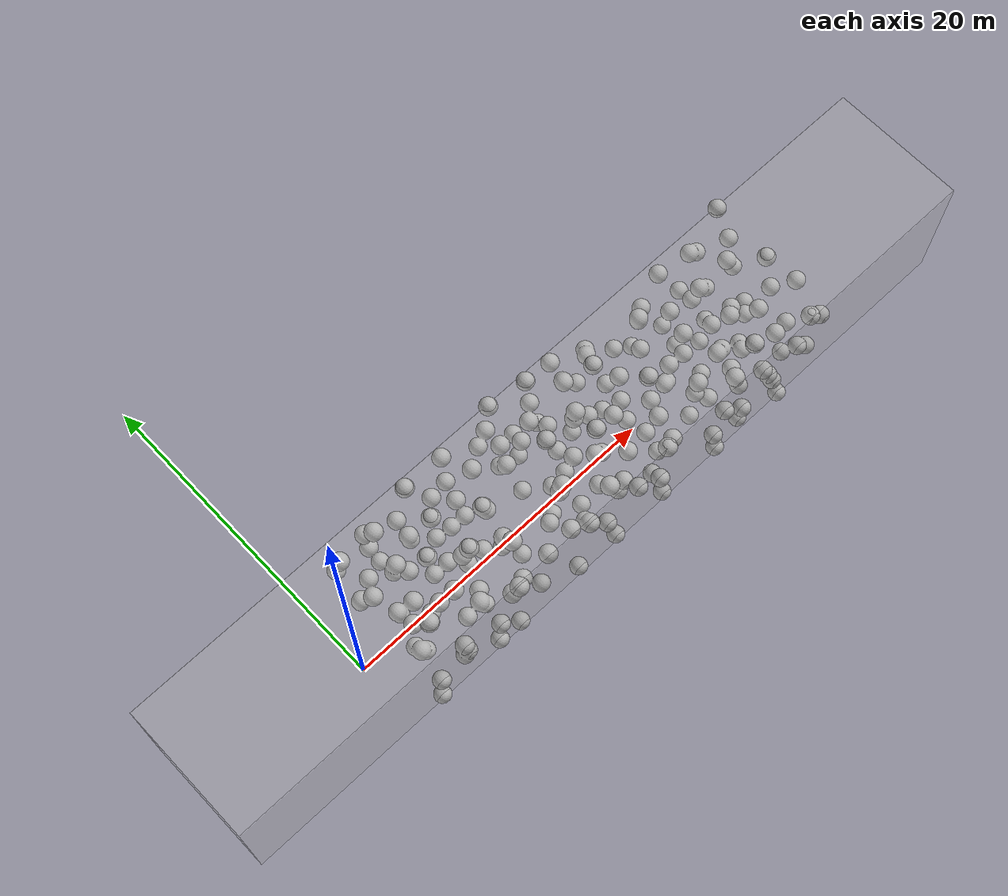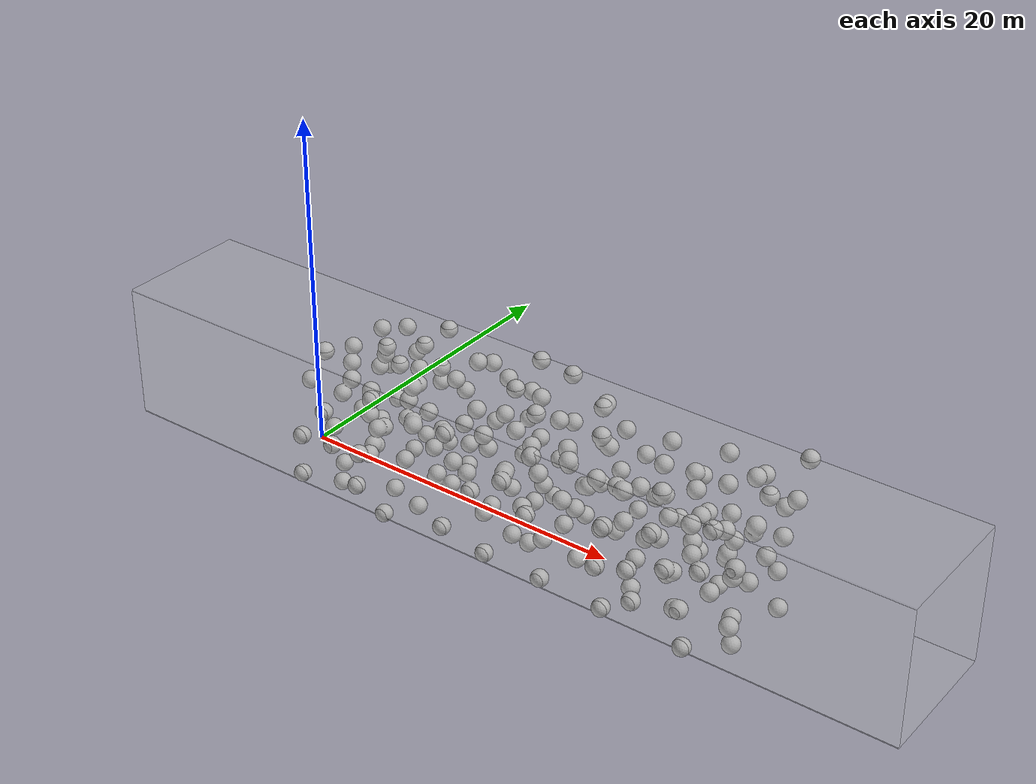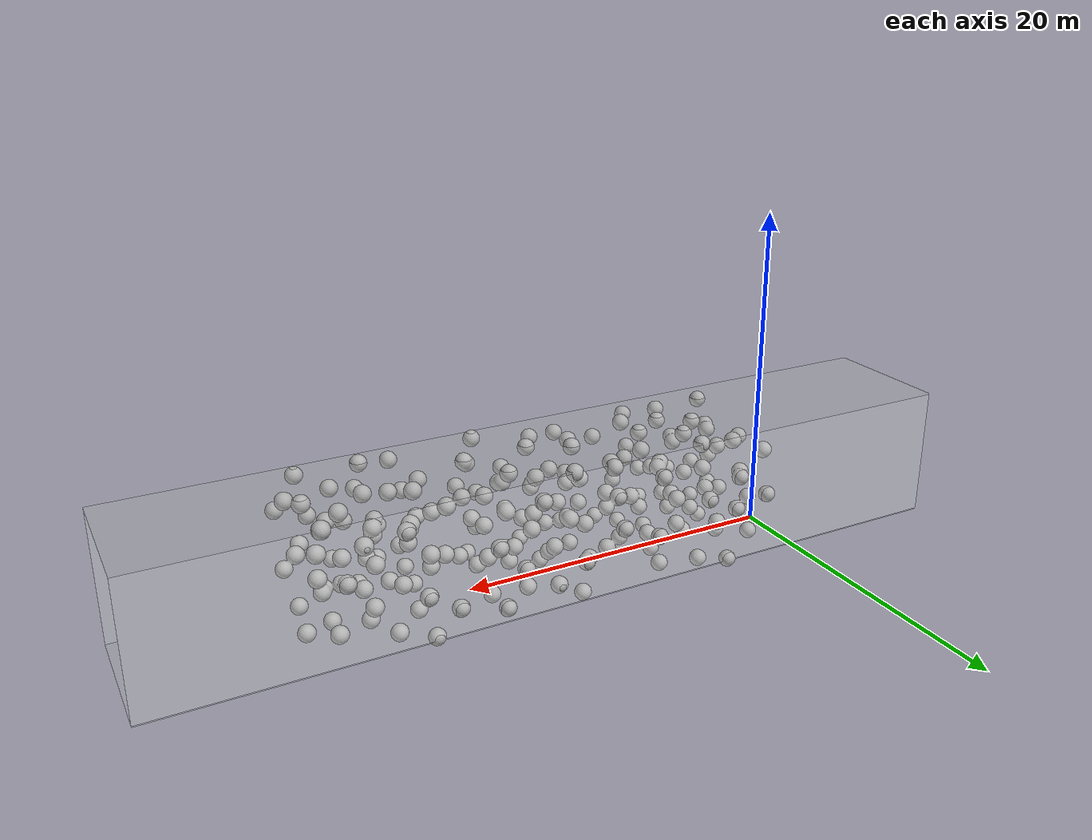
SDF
<?xml version="1.0"?>
<sdf version="1.8">
<world name="map">
    <physics name="1ms" type="ignored">
      <max_step_size>0.001</max_step_size>
      <real_time_factor>2.0</real_time_factor>
    </physics>

    <plugin filename="libgz-sim-physics-system.so" name="gz::sim::systems::Physics" />
    <plugin filename="libgz-sim-sensors-system.so" name="gz::sim::systems::Sensors">
        <render_engine>ogre2</render_engine>
    </plugin>
    <plugin filename="libgz-sim-contact-system" name="gz::sim::systems::Contact" />
    <plugin filename="libgz-sim-imu-system" name="gz::sim::systems::Imu" />
    <plugin filename="libgz-sim-scene-broadcaster-system.so" name="gz::sim::systems::SceneBroadcaster" />
    <plugin filename="libgz-sim-user-commands-system.so" name="gz::sim::systems::UserCommands" />

    <!-- sun and ground -->
    <light type="directional" name="sun">
        <cast_shadows>true</cast_shadows>
        <pose>0 0 10 0 0 0</pose>
        <diffuse>0.8 0.8 0.8 1</diffuse>
        <specular>0.2 0.2 0.2 1</specular>
        <attenuation>
            <range>1000</range>
            <constant>0.9</constant>
            <linear>0.01</linear>
            <quadratic>0.001</quadratic>
        </attenuation>
        <direction>-0.5 0.1 -0.9</direction>
    </light>

    <model name="ground_plane">
        <static>true</static>
        <link name="link">
            <pose>14.5 0 -0.05 0 0 0</pose>
            <collision name="collision">
                <geometry><box><size>50.0 8.0 0.1</size></box></geometry>
            </collision>
            <visual name="visual">
                <geometry><box><size>50.0 8.0 0.1</size></box></geometry>
                <material>
                    <ambient>0.8 0.8 0.8 0.15</ambient>
                    <diffuse>0.8 0.8 0.8 0.15</diffuse>
                    <specular>0.8 0.8 0.8 0.15</specular>
                </material>
            </visual>
        </link>
    </model>

    <model name="random_spheres_s0_d8_r2.0-2.0-2.0">
        <static>true</static>
        <link name="base_link">
            <visual name="merged_visual">
                <geometry>
                    <mesh><uri>meshes/random_spheres_s0_d8_r2.0-2.0-2.0.dae</uri></mesh>
                </geometry>
                <material>
                    <ambient>0.7 0.7 0.7 0.9</ambient>
                    <diffuse>0.7 0.7 0.7 0.9</diffuse>
                    <specular>0.7 0.7 0.7 0.9</specular>
                </material>
            </visual>
            <collision name="merged_collision">
                <geometry>
                    <mesh><uri>meshes/random_spheres_s0_d8_r2.0-2.0-2.0.dae</uri></mesh>
                </geometry>
            </collision>
        </link>
    </model>

    <model name="ceil">
        <static>true</static>
        <link name="link">
            <pose>14.5 0 8.05 0 0 0</pose>
            <collision name="collision">
                <geometry><box><size>50.0 8.0 0.1</size></box></geometry>
            </collision>
            <visual name="visual">
                <geometry><box><size>50.0 8.0 0.1</size></box></geometry>
                <material>
                    <ambient>0.8 0.8 0.8 0.15</ambient>
                    <diffuse>0.8 0.8 0.8 0.15</diffuse>
                    <specular>0.8 0.8 0.8 0.15</specular>
                </material>
            </visual>
        </link>
    </model>

    <model name="lwall">
        <static>true</static>
        <link name="link">
            <pose>14.5 4.0 4.0 1.57 0 0</pose>
            <collision name="collision">
                <geometry><box><size>50.0 8.0 0.1</size></box></geometry>
            </collision>
            <visual name="visual">
                <geometry><box><size>50.0 8.0 0.1</size></box></geometry>
                <material>
                    <ambient>1.0 1.0 1.0 0.15</ambient>
                    <diffuse>1.0 1.0 1.0 0.15</diffuse>
                    <specular>1.0 1.0 1.0 0.15</specular>
                </material>
            </visual>
        </link>
    </model>

    <model name="rwall">
        <static>true</static>
        <link name="link">
            <pose>14.5 -4.0 4.0 1.57 0 0</pose>
            <collision name="collision">
                <geometry><box><size>50.0 8.0 0.1</size></box></geometry>
            </collision>
            <visual name="visual">
                <geometry><box><size>50.0 8.0 0.1</size></box></geometry>
                <material>
                    <ambient>1.0 1.0 1.0 0.15</ambient>
                    <diffuse>1.0 1.0 1.0 0.15</diffuse>
                    <specular>1.0 1.0 1.0 0.15</specular>
                </material>
            </visual>
        </link>
    </model>

</world>
</sdf>
